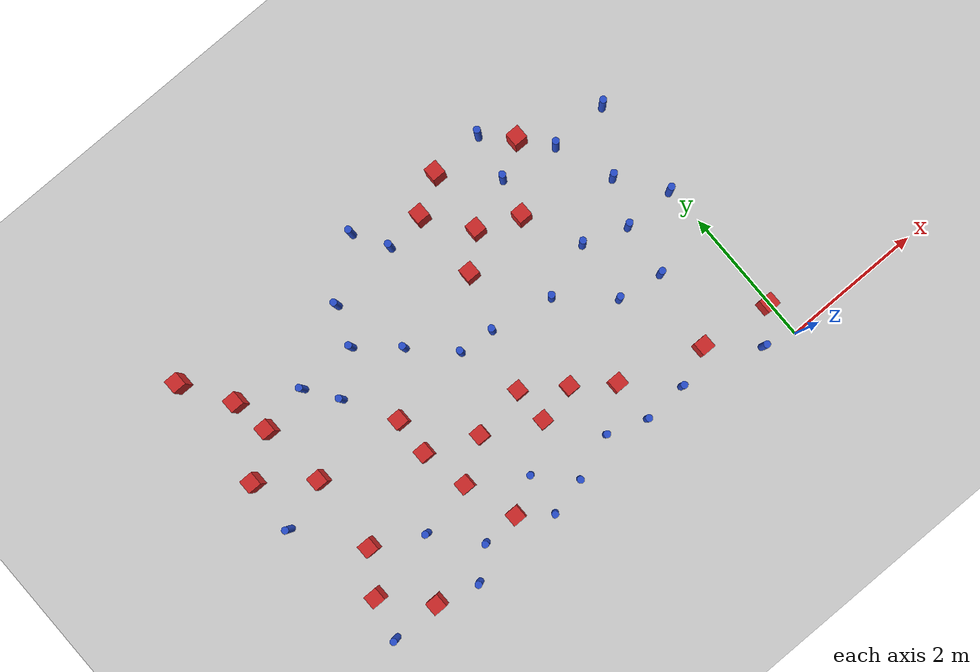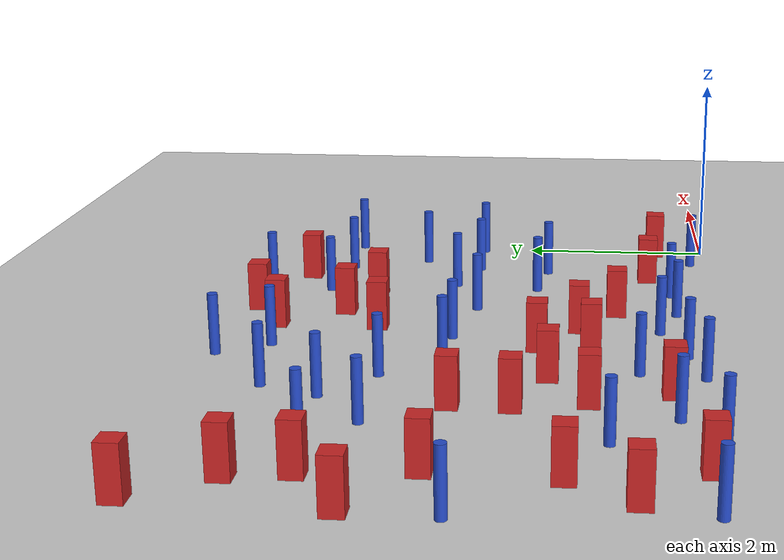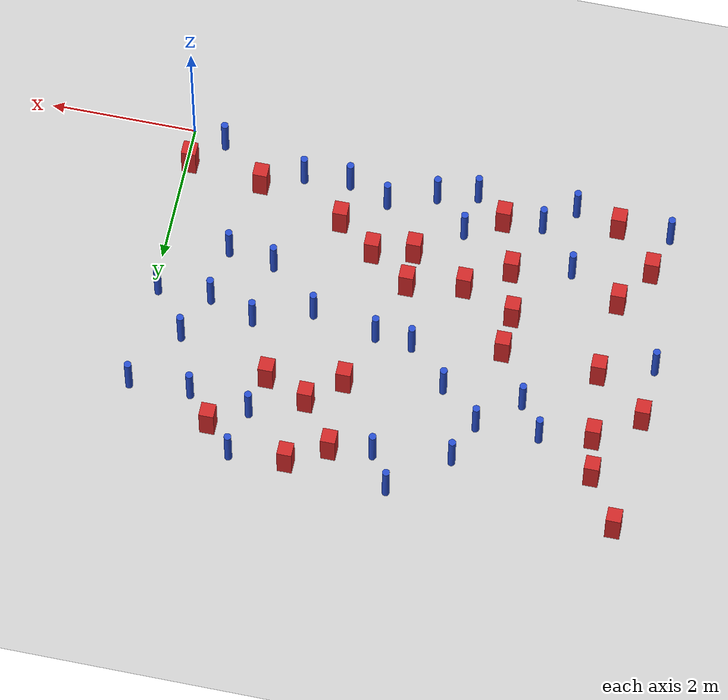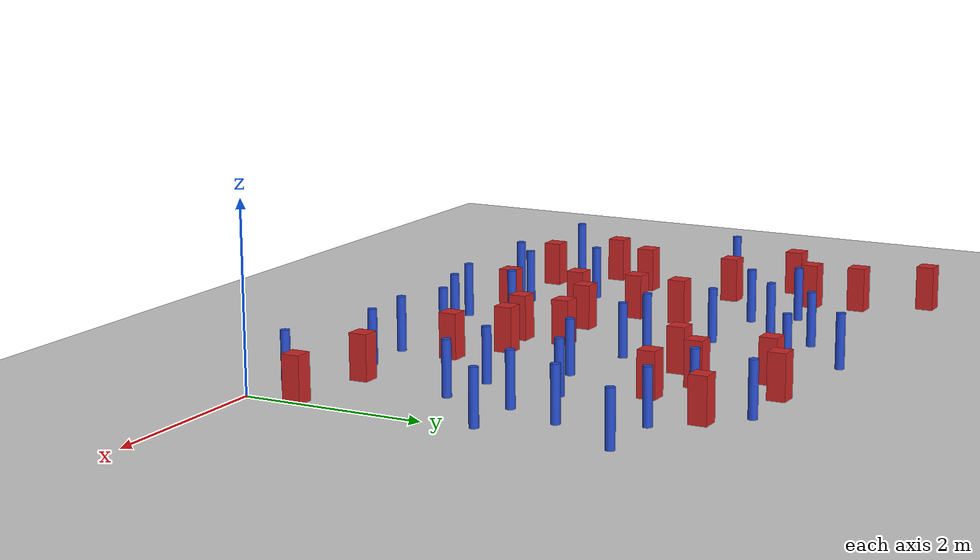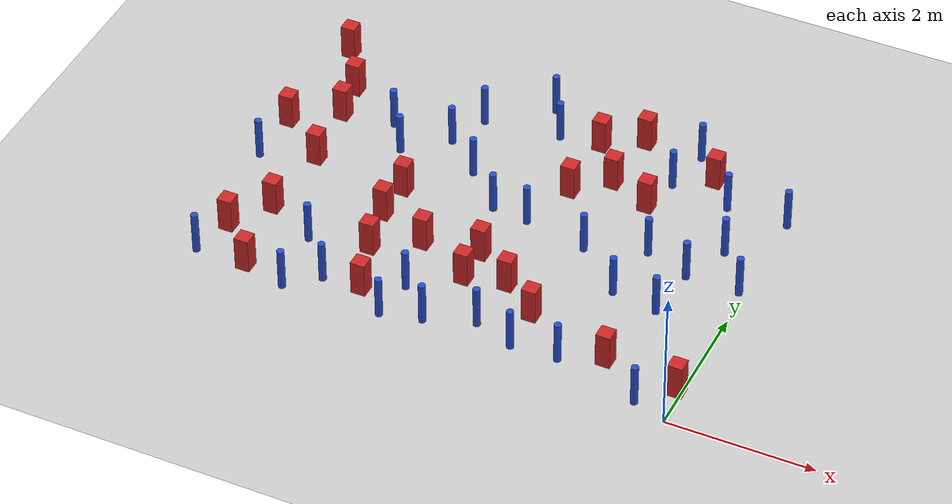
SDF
<sdf version="1.6">
 <world name="default">
  <model name="ground_plane">
   <static>1</static>
   <link name="link">
    <collision name="collision">
     <geometry><plane><normal>0 0 1</normal><size>100 100</size></plane></geometry>
     <surface><friction><ode><mu>100</mu><mu2>50</mu2></ode></friction></surface>
    </collision>
    <visual name="visual">
     <cast_shadows>0</cast_shadows>
     <geometry><plane><normal>0 0 1</normal><size>100 100</size></plane></geometry>
     <material>
      <ambient>1.0 1.0 1.0 1.0</ambient>
      <diffuse>0.8 0.8 0.8 1.0</diffuse>
      <specular>0.01 0.01 0.01 1.000000</specular>
     </material>
    </visual>
   </link>
  </model>
  <model name="pole_obstacle2">
   <static>true</static>
   <pose>-4.02288362384 0.260550982332 7.38925637345e-09 -8.47170692799e-08 1.24976765058e-08 -1.74513093017e-07</pose>
   <link name="link">
    <pose>0 0 0.3 0 -0 0</pose>
    <inertial>
     <mass>1</mass>
     <inertia><ixx>0.145833</ixx><ixy>0</ixy><ixz>0</ixz><iyy>0.145833</iyy><iyz>0</iyz><izz>0.125</izz></inertia>
    </inertial>
    <collision name="collision">
     <geometry><cylinder><radius>0.05</radius><length>.6</length></cylinder></geometry>
    </collision>
    <visual name="visual">
     <geometry><cylinder><radius>0.05</radius><length>.6</length></cylinder></geometry>
     <material>
      <script><name>Gazebo/Blue</name><uri>file://media/materials/scripts/gazebo.material</uri></script>
     </material>
    </visual>
   </link>
  </model>
  <model name="square_post_obstacle7">
   <static>true</static>
   <pose>-6.72281977313 4.81564942653 1.91545236811e-07 -7.35059704564e-06 1.12565212e-07 2.39332434364e-05</pose>
   <link name="link">
    <pose>0 0 0.25 0 -0 0</pose>
    <inertial>
     <mass>100</mass>
     <inertia>
      <ixx>0.166667</ixx>
      <ixy>0</ixy>
      <ixz>0</ixz>
      <iyy>0.166667</iyy>
      <iyz>0</iyz>
      <izz>0.166667</izz>
     </inertia>
    </inertial>
    <collision name="collision"><geometry><box><size>.2 .2 .5</size></box></geometry></collision>
    <visual name="visual">
     <geometry><box><size>.2 .2 .5</size></box></geometry>
     <material>
      <script><name>Gazebo/Red</name><uri>file://media/materials/scripts/gazebo.material</uri></script>
     </material>
    </visual>
   </link>
  </model>
  <model name="square_post_obstacle10">
   <static>true</static>
   <pose>-1.79566469293 3.57648062967 1.91545236811e-07 -7.35059704564e-06 1.12565212e-07 2.39332434364e-05</pose>
   <link name="link">
    <pose>0 0 0.25 0 -0 0</pose>
    <inertial>
     <mass>100</mass>
     <inertia>
      <ixx>0.166667</ixx>
      <ixy>0</ixy>
      <ixz>0</ixz>
      <iyy>0.166667</iyy>
      <iyz>0</iyz>
      <izz>0.166667</izz>
     </inertia>
    </inertial>
    <collision name="collision"><geometry><box><size>.2 .2 .5</size></box></geometry></collision>
    <visual name="visual">
     <geometry><box><size>.2 .2 .5</size></box></geometry>
     <material>
      <script><name>Gazebo/Red</name><uri>file://media/materials/scripts/gazebo.material</uri></script>
     </material>
    </visual>
   </link>
  </model>
  <model name="square_post_obstacle15">
   <static>true</static>
   <pose>-2.38048660059 3.82549536117 1.91545236811e-07 -7.35059704564e-06 1.12565212e-07 2.39332434364e-05</pose>
   <link name="link">
    <pose>0 0 0.25 0 -0 0</pose>
    <inertial>
     <mass>100</mass>
     <inertia>
      <ixx>0.166667</ixx>
      <ixy>0</ixy>
      <ixz>0</ixz>
      <iyy>0.166667</iyy>
      <iyz>0</iyz>
      <izz>0.166667</izz>
     </inertia>
    </inertial>
    <collision name="collision"><geometry><box><size>.2 .2 .5</size></box></geometry></collision>
    <visual name="visual">
     <geometry><box><size>.2 .2 .5</size></box></geometry>
     <material>
      <script><name>Gazebo/Red</name><uri>file://media/materials/scripts/gazebo.material</uri></script>
     </material>
    </visual>
   </link>
  </model>
  <model name="square_post_obstacle18">
   <static>true</static>
   <pose>-1.08649604366 0.678129804485 1.91545236811e-07 -7.35059704564e-06 1.12565212e-07 2.39332434364e-05</pose>
   <link name="link">
    <pose>0 0 0.25 0 -0 0</pose>
    <inertial>
     <mass>100</mass>
     <inertia>
      <ixx>0.166667</ixx>
      <ixy>0</ixy>
      <ixz>0</ixz>
      <iyy>0.166667</iyy>
      <iyz>0</iyz>
      <izz>0.166667</izz>
     </inertia>
    </inertial>
    <collision name="collision"><geometry><box><size>.2 .2 .5</size></box></geometry></collision>
    <visual name="visual">
     <geometry><box><size>.2 .2 .5</size></box></geometry>
     <material>
      <script><name>Gazebo/Red</name><uri>file://media/materials/scripts/gazebo.material</uri></script>
     </material>
    </visual>
   </link>
  </model>
  <model name="pole_obstacle16">
   <static>true</static>
   <pose>-3.59063591061 2.70652218727 7.38925637345e-09 -8.471706928e-08 1.24976765098e-08 -1.74513093016e-07</pose>
   <link name="link">
    <pose>0 0 0.3 0 -0 0</pose>
    <inertial>
     <mass>1</mass>
     <inertia><ixx>0.145833</ixx><ixy>0</ixy><ixz>0</ixz><iyy>0.145833</iyy><iyz>0</iyz><izz>0.125</izz></inertia>
    </inertial>
    <collision name="collision">
     <geometry><cylinder><radius>0.05</radius><length>.6</length></cylinder></geometry>
    </collision>
    <visual name="visual">
     <geometry><cylinder><radius>0.05</radius><length>.6</length></cylinder></geometry>
     <material>
      <script><name>Gazebo/Blue</name><uri>file://media/materials/scripts/gazebo.material</uri></script>
     </material>
    </visual>
   </link>
  </model>
  <model name="pole_obstacle17">
   <static>true</static>
   <pose>-1.41972756546 2.76100468626 7.38925637345e-09 -8.47170692799e-08 1.24976765053e-08 -1.74513093017e-07</pose>
   <link name="link">
    <pose>0 0 0.3 0 -0 0</pose>
    <inertial>
     <mass>1</mass>
     <inertia><ixx>0.145833</ixx><ixy>0</ixy><ixz>0</ixz><iyy>0.145833</iyy><iyz>0</iyz><izz>0.125</izz></inertia>
    </inertial>
    <collision name="collision">
     <geometry><cylinder><radius>0.05</radius><length>.6</length></cylinder></geometry>
    </collision>
    <visual name="visual">
     <geometry><cylinder><radius>0.05</radius><length>.6</length></cylinder></geometry>
     <material>
      <script><name>Gazebo/Blue</name><uri>file://media/materials/scripts/gazebo.material</uri></script>
     </material>
    </visual>
   </link>
  </model>
  <model name="pole_obstacle33">
   <static>true</static>
   <pose>-0.88521694704 1.78056740458 7.38925637345e-09 -8.47170692799e-08 1.24976765033e-08 -1.7451309302e-07</pose>
   <link name="link">
    <pose>0 0 0.3 0 -0 0</pose>
    <inertial>
     <mass>1</mass>
     <inertia><ixx>0.145833</ixx><ixy>0</ixy><ixz>0</ixz><iyy>0.145833</iyy><iyz>0</iyz><izz>0.125</izz></inertia>
    </inertial>
    <collision name="collision">
     <geometry><cylinder><radius>0.05</radius><length>.6</length></cylinder></geometry>
    </collision>
    <visual name="visual">
     <geometry><cylinder><radius>0.05</radius><length>.6</length></cylinder></geometry>
     <material>
      <script><name>Gazebo/Blue</name><uri>file://media/materials/scripts/gazebo.material</uri></script>
     </material>
    </visual>
   </link>
  </model>
  <model name="pole_obstacle37">
   <static>true</static>
   <pose>-0.839337424971 3.99876544537 7.38925637345e-09 -8.47170692799e-08 1.24976765083e-08 -1.74513093016e-07</pose>
   <link name="link">
    <pose>0 0 0.3 0 -0 0</pose>
    <inertial>
     <mass>1</mass>
     <inertia><ixx>0.145833</ixx><ixy>0</ixy><ixz>0</ixz><iyy>0.145833</iyy><iyz>0</iyz><izz>0.125</izz></inertia>
    </inertial>
    <collision name="collision">
     <geometry><cylinder><radius>0.05</radius><length>.6</length></cylinder></geometry>
    </collision>
    <visual name="visual">
     <geometry><cylinder><radius>0.05</radius><length>.6</length></cylinder></geometry>
     <material>
      <script><name>Gazebo/Blue</name><uri>file://media/materials/scripts/gazebo.material</uri></script>
     </material>
    </visual>
   </link>
  </model>
  <model name="pole_obstacle38">
   <static>true</static>
   <pose>-0.529924197971 3.17793815558 7.38925637345e-09 -8.47170692799e-08 1.24976765084e-08 -1.74513093016e-07</pose>
   <link name="link">
    <pose>0 0 0.3 0 -0 0</pose>
    <inertial>
     <mass>1</mass>
     <inertia><ixx>0.145833</ixx><ixy>0</ixy><ixz>0</ixz><iyy>0.145833</iyy><iyz>0</iyz><izz>0.125</izz></inertia>
    </inertial>
    <collision name="collision">
     <geometry><cylinder><radius>0.05</radius><length>.6</length></cylinder></geometry>
    </collision>
    <visual name="visual">
     <geometry><cylinder><radius>0.05</radius><length>.6</length></cylinder></geometry>
     <material>
      <script><name>Gazebo/Blue</name><uri>file://media/materials/scripts/gazebo.material</uri></script>
     </material>
    </visual>
   </link>
  </model>
  <model name="pole_obstacle45">
   <static>true</static>
   <pose>-5.37672932414 0.213821925525 7.38925637345e-09 -8.471706928e-08 1.24976765136e-08 -1.74513093014e-07</pose>
   <link name="link">
    <pose>0 0 0.3 0 -0 0</pose>
    <inertial>
     <mass>1</mass>
     <inertia><ixx>0.145833</ixx><ixy>0</ixy><ixz>0</ixz><iyy>0.145833</iyy><iyz>0</iyz><izz>0.125</izz></inertia>
    </inertial>
    <collision name="collision">
     <geometry><cylinder><radius>0.05</radius><length>.6</length></cylinder></geometry>
    </collision>
    <visual name="visual">
     <geometry><cylinder><radius>0.05</radius><length>.6</length></cylinder></geometry>
     <material>
      <script><name>Gazebo/Blue</name><uri>file://media/materials/scripts/gazebo.material</uri></script>
     </material>
    </visual>
   </link>
  </model>
  <model name="square_post_obstacle45">
   <static>true</static>
   <pose>-3.3424861455 1.30667148875 1.91545236811e-07 -7.35059704564e-06 1.12565212e-07 2.39332434364e-05</pose>
   <link name="link">
    <pose>0 0 0.25 0 -0 0</pose>
    <inertial>
     <mass>100</mass>
     <inertia>
      <ixx>0.166667</ixx>
      <ixy>0</ixy>
      <ixz>0</ixz>
      <iyy>0.166667</iyy>
      <iyz>0</iyz>
      <izz>0.166667</izz>
     </inertia>
    </inertial>
    <collision name="collision"><geometry><box><size>.2 .2 .5</size></box></geometry></collision>
    <visual name="visual">
     <geometry><box><size>.2 .2 .5</size></box></geometry>
     <material>
      <script><name>Gazebo/Red</name><uri>file://media/materials/scripts/gazebo.material</uri></script>
     </material>
    </visual>
   </link>
  </model>
  <model name="square_post_obstacle47">
   <static>true</static>
   <pose>-1.17730613893 4.40486807342 1.91545236811e-07 -7.35059704564e-06 1.12565212e-07 2.39332434364e-05</pose>
   <link name="link">
    <pose>0 0 0.25 0 -0 0</pose>
    <inertial>
     <mass>100</mass>
     <inertia>
      <ixx>0.166667</ixx>
      <ixy>0</ixy>
      <ixz>0</ixz>
      <iyy>0.166667</iyy>
      <iyz>0</iyz>
      <izz>0.166667</izz>
     </inertia>
    </inertial>
    <collision name="collision"><geometry><box><size>.2 .2 .5</size></box></geometry></collision>
    <visual name="visual">
     <geometry><box><size>.2 .2 .5</size></box></geometry>
     <material>
      <script><name>Gazebo/Red</name><uri>file://media/materials/scripts/gazebo.material</uri></script>
     </material>
    </visual>
   </link>
  </model>
  <model name="pole_obstacle48">
   <static>true</static>
   <pose>-0.799027948205 2.54511101772 7.38925637345e-09 -8.47170692799e-08 1.2497676509e-08 -1.74513093016e-07</pose>
   <link name="link">
    <pose>0 0 0.3 0 -0 0</pose>
    <inertial>
     <mass>1</mass>
     <inertia><ixx>0.145833</ixx><ixy>0</ixy><ixz>0</ixz><iyy>0.145833</iyy><iyz>0</iyz><izz>0.125</izz></inertia>
    </inertial>
    <collision name="collision">
     <geometry><cylinder><radius>0.05</radius><length>.6</length></cylinder></geometry>
    </collision>
    <visual name="visual">
     <geometry><cylinder><radius>0.05</radius><length>.6</length></cylinder></geometry>
     <material>
      <script><name>Gazebo/Blue</name><uri>file://media/materials/scripts/gazebo.material</uri></script>
     </material>
    </visual>
   </link>
  </model>
  <model name="pole_obstacle50">
   <static>true</static>
   <pose>-1.52088882725 1.88133360358 7.38925637345e-09 -8.471706928e-08 1.24976765079e-08 -1.74513093017e-07</pose>
   <link name="link">
    <pose>0 0 0.3 0 -0 0</pose>
    <inertial>
     <mass>1</mass>
     <inertia><ixx>0.145833</ixx><ixy>0</ixy><ixz>0</ixz><iyy>0.145833</iyy><iyz>0</iyz><izz>0.125</izz></inertia>
    </inertial>
    <collision name="collision">
     <geometry><cylinder><radius>0.05</radius><length>.6</length></cylinder></geometry>
    </collision>
    <visual name="visual">
     <geometry><cylinder><radius>0.05</radius><length>.6</length></cylinder></geometry>
     <material>
      <script><name>Gazebo/Blue</name><uri>file://media/materials/scripts/gazebo.material</uri></script>
     </material>
    </visual>
   </link>
  </model>
  <model name="square_post_obstacle52">
   <static>true</static>
   <pose>-4.80095884519 2.54305989513 1.91545236811e-07 -7.35059704564e-06 1.12565212e-07 2.39332434364e-05</pose>
   <link name="link">
    <pose>0 0 0.25 0 -0 0</pose>
    <inertial>
     <mass>100</mass>
     <inertia>
      <ixx>0.166667</ixx>
      <ixy>0</ixy>
      <ixz>0</ixz>
      <iyy>0.166667</iyy>
      <iyz>0</iyz>
      <izz>0.166667</izz>
     </inertia>
    </inertial>
    <collision name="collision"><geometry><box><size>.2 .2 .5</size></box></geometry></collision>
    <visual name="visual">
     <geometry><box><size>.2 .2 .5</size></box></geometry>
     <material>
      <script><name>Gazebo/Red</name><uri>file://media/materials/scripts/gazebo.material</uri></script>
     </material>
    </visual>
   </link>
  </model>
  <model name="square_post_obstacle56">
   <static>true</static>
   <pose>-4.10913657978 1.69810923646 1.91545236811e-07 -7.35059704564e-06 1.12565212e-07 2.39332434364e-05</pose>
   <link name="link">
    <pose>0 0 0.25 0 -0 0</pose>
    <inertial>
     <mass>100</mass>
     <inertia>
      <ixx>0.166667</ixx>
      <ixy>0</ixy>
      <ixz>0</ixz>
      <iyy>0.166667</iyy>
      <iyz>0</iyz>
      <izz>0.166667</izz>
     </inertia>
    </inertial>
    <collision name="collision"><geometry><box><size>.2 .2 .5</size></box></geometry></collision>
    <visual name="visual">
     <geometry><box><size>.2 .2 .5</size></box></geometry>
     <material>
      <script><name>Gazebo/Red</name><uri>file://media/materials/scripts/gazebo.material</uri></script>
     </material>
    </visual>
   </link>
  </model>
  <model name="square_post_obstacle61">
   <static>true</static>
   <pose>-6.30442835152 4.12791431736 1.91545236811e-07 -7.35059704564e-06 1.12565212e-07 2.39332434364e-05</pose>
   <link name="link">
    <pose>0 0 0.25 0 -0 0</pose>
    <inertial>
     <mass>100</mass>
     <inertia>
      <ixx>0.166667</ixx>
      <ixy>0</ixy>
      <ixz>0</ixz>
      <iyy>0.166667</iyy>
      <iyz>0</iyz>
      <izz>0.166667</izz>
     </inertia>
    </inertial>
    <collision name="collision"><geometry><box><size>.2 .2 .5</size></box></geometry></collision>
    <visual name="visual">
     <geometry><box><size>.2 .2 .5</size></box></geometry>
     <material>
      <script><name>Gazebo/Red</name><uri>file://media/materials/scripts/gazebo.material</uri></script>
     </material>
    </visual>
   </link>
  </model>
  <model name="pole_obstacle65">
   <static>true</static>
   <pose>-5.51418417547 3.69711565611 7.38925637345e-09 -8.47170692798e-08 1.24976764937e-08 -1.74513093023e-07</pose>
   <link name="link">
    <pose>0 0 0.3 0 -0 0</pose>
    <inertial>
     <mass>1</mass>
     <inertia><ixx>0.145833</ixx><ixy>0</ixy><ixz>0</ixz><iyy>0.145833</iyy><iyz>0</iyz><izz>0.125</izz></inertia>
    </inertial>
    <collision name="collision">
     <geometry><cylinder><radius>0.05</radius><length>.6</length></cylinder></geometry>
    </collision>
    <visual name="visual">
     <geometry><cylinder><radius>0.05</radius><length>.6</length></cylinder></geometry>
     <material>
      <script><name>Gazebo/Blue</name><uri>file://media/materials/scripts/gazebo.material</uri></script>
     </material>
    </visual>
   </link>
  </model>
  <model name="square_post_obstacle70">
   <static>true</static>
   <pose>-3.3454929308 1.82337777555 1.91545236811e-07 -7.35059704564e-06 1.12565212e-07 2.39332434364e-05</pose>
   <link name="link">
    <pose>0 0 0.25 0 -0 0</pose>
    <inertial>
     <mass>100</mass>
     <inertia>
      <ixx>0.166667</ixx>
      <ixy>0</ixy>
      <ixz>0</ixz>
      <iyy>0.166667</iyy>
      <iyz>0</iyz>
      <izz>0.166667</izz>
     </inertia>
    </inertial>
    <collision name="collision"><geometry><box><size>.2 .2 .5</size></box></geometry></collision>
    <visual name="visual">
     <geometry><box><size>.2 .2 .5</size></box></geometry>
     <material>
      <script><name>Gazebo/Red</name><uri>file://media/materials/scripts/gazebo.material</uri></script>
     </material>
    </visual>
   </link>
  </model>
  <model name="square_post_obstacle73">
   <static>true</static>
   <pose>-6.11959921745 2.62537722753 1.91545236811e-07 -7.35059704564e-06 1.12565212e-07 2.39332434364e-05</pose>
   <link name="link">
    <pose>0 0 0.25 0 -0 0</pose>
    <inertial>
     <mass>100</mass>
     <inertia>
      <ixx>0.166667</ixx>
      <ixy>0</ixy>
      <ixz>0</ixz>
      <iyy>0.166667</iyy>
      <iyz>0</iyz>
      <izz>0.166667</izz>
     </inertia>
    </inertial>
    <collision name="collision"><geometry><box><size>.2 .2 .5</size></box></geometry></collision>
    <visual name="visual">
     <geometry><box><size>.2 .2 .5</size></box></geometry>
     <material>
      <script><name>Gazebo/Red</name><uri>file://media/materials/scripts/gazebo.material</uri></script>
     </material>
    </visual>
   </link>
  </model>
  <model name="pole_obstacle69">
   <static>true</static>
   <pose>-1.53541971919 4.78736993391 7.38925637345e-09 -8.47170692799e-08 1.24976765033e-08 -1.74513093018e-07</pose>
   <link name="link">
    <pose>0 0 0.3 0 -0 0</pose>
    <inertial>
     <mass>1</mass>
     <inertia><ixx>0.145833</ixx><ixy>0</ixy><ixz>0</ixz><iyy>0.145833</iyy><iyz>0</iyz><izz>0.125</izz></inertia>
    </inertial>
    <collision name="collision">
     <geometry><cylinder><radius>0.05</radius><length>.6</length></cylinder></geometry>
    </collision>
    <visual name="visual">
     <geometry><cylinder><radius>0.05</radius><length>.6</length></cylinder></geometry>
     <material>
      <script><name>Gazebo/Blue</name><uri>file://media/materials/scripts/gazebo.material</uri></script>
     </material>
    </visual>
   </link>
  </model>
  <model name="pole_obstacle70">
   <static>true</static>
   <pose>-5.20522984234 3.25235434078 7.38925637345e-09 -8.47170692798e-08 1.24976764937e-08 -1.74513093023e-07</pose>
   <link name="link">
    <pose>0 0 0.3 0 -0 0</pose>
    <inertial>
     <mass>1</mass>
     <inertia><ixx>0.145833</ixx><ixy>0</ixy><ixz>0</ixz><iyy>0.145833</iyy><iyz>0</iyz><izz>0.125</izz></inertia>
    </inertial>
    <collision name="collision">
     <geometry><cylinder><radius>0.05</radius><length>.6</length></cylinder></geometry>
    </collision>
    <visual name="visual">
     <geometry><cylinder><radius>0.05</radius><length>.6</length></cylinder></geometry>
     <material>
      <script><name>Gazebo/Blue</name><uri>file://media/materials/scripts/gazebo.material</uri></script>
     </material>
    </visual>
   </link>
  </model>
  <model name="pole_obstacle76">
   <static>true</static>
   <pose>-4.66148103217 3.70528833598 7.38925637345e-09 -8.47170692798e-08 1.24976764937e-08 -1.74513093023e-07</pose>
   <link name="link">
    <pose>0 0 0.3 0 -0 0</pose>
    <inertial>
     <mass>1</mass>
     <inertia><ixx>0.145833</ixx><ixy>0</ixy><ixz>0</ixz><iyy>0.145833</iyy><iyz>0</iyz><izz>0.125</izz></inertia>
    </inertial>
    <collision name="collision">
     <geometry><cylinder><radius>0.05</radius><length>.6</length></cylinder></geometry>
    </collision>
    <visual name="visual">
     <geometry><cylinder><radius>0.05</radius><length>.6</length></cylinder></geometry>
     <material>
      <script><name>Gazebo/Blue</name><uri>file://media/materials/scripts/gazebo.material</uri></script>
     </material>
    </visual>
   </link>
  </model>
  <model name="pole_obstacle87">
   <static>true</static>
   <pose>-3.68314602437 4.87391654846 7.38925637345e-09 -8.47170692798e-08 1.24976765033e-08 -1.74513093019e-07</pose>
   <link name="link">
    <pose>0 0 0.3 0 -0 0</pose>
    <inertial>
     <mass>1</mass>
     <inertia><ixx>0.145833</ixx><ixy>0</ixy><ixz>0</ixz><iyy>0.145833</iyy><iyz>0</iyz><izz>0.125</izz></inertia>
    </inertial>
    <collision name="collision">
     <geometry><cylinder><radius>0.05</radius><length>.6</length></cylinder></geometry>
    </collision>
    <visual name="visual">
     <geometry><cylinder><radius>0.05</radius><length>.6</length></cylinder></geometry>
     <material>
      <script><name>Gazebo/Blue</name><uri>file://media/materials/scripts/gazebo.material</uri></script>
     </material>
    </visual>
   </link>
  </model>
  <model name="pole_obstacle96">
   <static>true</static>
   <pose>-5.48728348385 1.16060156533 7.38925637345e-09 -8.471706928e-08 1.24976765134e-08 -1.74513093015e-07</pose>
   <link name="link">
    <pose>0 0 0.3 0 -0 0</pose>
    <inertial>
     <mass>1</mass>
     <inertia><ixx>0.145833</ixx><ixy>0</ixy><ixz>0</ixz><iyy>0.145833</iyy><iyz>0</iyz><izz>0.125</izz></inertia>
    </inertial>
    <collision name="collision">
     <geometry><cylinder><radius>0.05</radius><length>.6</length></cylinder></geometry>
    </collision>
    <visual name="visual">
     <geometry><cylinder><radius>0.05</radius><length>.6</length></cylinder></geometry>
     <material>
      <script><name>Gazebo/Blue</name><uri>file://media/materials/scripts/gazebo.material</uri></script>
     </material>
    </visual>
   </link>
  </model>
  <model name="pole_obstacle108">
   <static>true</static>
   <pose>-3.47717565525 0.389131987897 7.38925637345e-09 -8.471706928e-08 1.24976765172e-08 -1.74513093013e-07</pose>
   <link name="link">
    <pose>0 0 0.3 0 -0 0</pose>
    <inertial>
     <mass>1</mass>
     <inertia><ixx>0.145833</ixx><ixy>0</ixy><ixz>0</ixz><iyy>0.145833</iyy><iyz>0</iyz><izz>0.125</izz></inertia>
    </inertial>
    <collision name="collision">
     <geometry><cylinder><radius>0.05</radius><length>.6</length></cylinder></geometry>
    </collision>
    <visual name="visual">
     <geometry><cylinder><radius>0.05</radius><length>.6</length></cylinder></geometry>
     <material>
      <script><name>Gazebo/Blue</name><uri>file://media/materials/scripts/gazebo.material</uri></script>
     </material>
    </visual>
   </link>
  </model>
  <model name="square_post_obstacle97">
   <static>true</static>
   <pose>-6.53955249002 0.955374389477 1.91545236811e-07 -7.35059704564e-06 1.12565212e-07 2.39332434364e-05</pose>
   <link name="link">
    <pose>0 0 0.25 0 -0 0</pose>
    <inertial>
     <mass>100</mass>
     <inertia>
      <ixx>0.166667</ixx>
      <ixy>0</ixy>
      <ixz>0</ixz>
      <iyy>0.166667</iyy>
      <iyz>0</iyz>
      <izz>0.166667</izz>
     </inertia>
    </inertial>
    <collision name="collision"><geometry><box><size>.2 .2 .5</size></box></geometry></collision>
    <visual name="visual">
     <geometry><box><size>.2 .2 .5</size></box></geometry>
     <material>
      <script><name>Gazebo/Red</name><uri>file://media/materials/scripts/gazebo.material</uri></script>
     </material>
    </visual>
   </link>
  </model>
  <model name="square_post_obstacle99">
   <static>true</static>
   <pose>-6.18154161153 1.51510342565 1.91545236811e-07 -7.35059704564e-06 1.12565212e-07 2.39332434364e-05</pose>
   <link name="link">
    <pose>0 0 0.25 0 -0 0</pose>
    <inertial>
     <mass>100</mass>
     <inertia>
      <ixx>0.166667</ixx>
      <ixy>0</ixy>
      <ixz>0</ixz>
      <iyy>0.166667</iyy>
      <iyz>0</iyz>
      <izz>0.166667</izz>
     </inertia>
    </inertial>
    <collision name="collision"><geometry><box><size>.2 .2 .5</size></box></geometry></collision>
    <visual name="visual">
     <geometry><box><size>.2 .2 .5</size></box></geometry>
     <material>
      <script><name>Gazebo/Red</name><uri>file://media/materials/scripts/gazebo.material</uri></script>
     </material>
    </visual>
   </link>
  </model>
  <model name="pole_obstacle115">
   <static>true</static>
   <pose>-0.00590156966855 4.01124573222 7.38925637345e-09 -8.47170692799e-08 1.24976765055e-08 -1.74513093019e-07</pose>
   <link name="link">
    <pose>0 0 0.3 0 -0 0</pose>
    <inertial>
     <mass>1</mass>
     <inertia><ixx>0.145833</ixx><ixy>0</ixy><ixz>0</ixz><iyy>0.145833</iyy><iyz>0</iyz><izz>0.125</izz></inertia>
    </inertial>
    <collision name="collision">
     <geometry><cylinder><radius>0.05</radius><length>.6</length></cylinder></geometry>
    </collision>
    <visual name="visual">
     <geometry><cylinder><radius>0.05</radius><length>.6</length></cylinder></geometry>
     <material>
      <script><name>Gazebo/Blue</name><uri>file://media/materials/scripts/gazebo.material</uri></script>
     </material>
    </visual>
   </link>
  </model>
  <model name="pole_obstacle131">
   <static>true</static>
   <pose>-1.63965275175 0.453551942423 7.38925637345e-09 -8.47170692799e-08 1.24976765052e-08 -1.74513093018e-07</pose>
   <link name="link">
    <pose>0 0 0.3 0 -0 0</pose>
    <inertial>
     <mass>1</mass>
     <inertia><ixx>0.145833</ixx><ixy>0</ixy><ixz>0</ixz><iyy>0.145833</iyy><iyz>0</iyz><izz>0.125</izz></inertia>
    </inertial>
    <collision name="collision">
     <geometry><cylinder><radius>0.05</radius><length>.6</length></cylinder></geometry>
    </collision>
    <visual name="visual">
     <geometry><cylinder><radius>0.05</radius><length>.6</length></cylinder></geometry>
     <material>
      <script><name>Gazebo/Blue</name><uri>file://media/materials/scripts/gazebo.material</uri></script>
     </material>
    </visual>
   </link>
  </model>
  <model name="pole_obstacle136">
   <static>true</static>
   <pose>-2.27400994695 0.422213712599 7.38925637345e-09 -8.471706928e-08 1.24976765172e-08 -1.74513093013e-07</pose>
   <link name="link">
    <pose>0 0 0.3 0 -0 0</pose>
    <inertial>
     <mass>1</mass>
     <inertia><ixx>0.145833</ixx><ixy>0</ixy><ixz>0</ixz><iyy>0.145833</iyy><iyz>0</iyz><izz>0.125</izz></inertia>
    </inertial>
    <collision name="collision">
     <geometry><cylinder><radius>0.05</radius><length>.6</length></cylinder></geometry>
    </collision>
    <visual name="visual">
     <geometry><cylinder><radius>0.05</radius><length>.6</length></cylinder></geometry>
     <material>
      <script><name>Gazebo/Blue</name><uri>file://media/materials/scripts/gazebo.material</uri></script>
     </material>
    </visual>
   </link>
  </model>
  <model name="square_post_obstacle120">
   <static>true</static>
   <pose>-2.82990901123 4.45145959006 1.91545236811e-07 -7.35059704564e-06 1.12565212e-07 2.39332434364e-05</pose>
   <link name="link">
    <pose>0 0 0.25 0 -0 0</pose>
    <inertial>
     <mass>100</mass>
     <inertia>
      <ixx>0.166667</ixx>
      <ixy>0</ixy>
      <ixz>0</ixz>
      <iyy>0.166667</iyy>
      <iyz>0</iyz>
      <izz>0.166667</izz>
     </inertia>
    </inertial>
    <collision name="collision"><geometry><box><size>.2 .2 .5</size></box></geometry></collision>
    <visual name="visual">
     <geometry><box><size>.2 .2 .5</size></box></geometry>
     <material>
      <script><name>Gazebo/Red</name><uri>file://media/materials/scripts/gazebo.material</uri></script>
     </material>
    </visual>
   </link>
  </model>
  <model name="square_post_obstacle122">
   <static>true</static>
   <pose>-4.6856548668 1.32664230948 1.91545236811e-07 -7.35059704564e-06 1.12565212e-07 2.39332434364e-05</pose>
   <link name="link">
    <pose>0 0 0.25 0 -0 0</pose>
    <inertial>
     <mass>100</mass>
     <inertia>
      <ixx>0.166667</ixx>
      <ixy>0</ixy>
      <ixz>0</ixz>
      <iyy>0.166667</iyy>
      <iyz>0</iyz>
      <izz>0.166667</izz>
     </inertia>
    </inertial>
    <collision name="collision"><geometry><box><size>.2 .2 .5</size></box></geometry></collision>
    <visual name="visual">
     <geometry><box><size>.2 .2 .5</size></box></geometry>
     <material>
      <script><name>Gazebo/Red</name><uri>file://media/materials/scripts/gazebo.material</uri></script>
     </material>
    </visual>
   </link>
  </model>
  <model name="pole_obstacle149">
   <static>true</static>
   <pose>-2.19910741831 2.4831902227 7.38925637345e-09 -8.47170692798e-08 1.24976764939e-08 -1.74513093025e-07</pose>
   <link name="link">
    <pose>0 0 0.3 0 -0 0</pose>
    <inertial>
     <mass>1</mass>
     <inertia><ixx>0.145833</ixx><ixy>0</ixy><ixz>0</ixz><iyy>0.145833</iyy><iyz>0</iyz><izz>0.125</izz></inertia>
    </inertial>
    <collision name="collision">
     <geometry><cylinder><radius>0.05</radius><length>.6</length></cylinder></geometry>
    </collision>
    <visual name="visual">
     <geometry><cylinder><radius>0.05</radius><length>.6</length></cylinder></geometry>
     <material>
      <script><name>Gazebo/Blue</name><uri>file://media/materials/scripts/gazebo.material</uri></script>
     </material>
    </visual>
   </link>
  </model>
  <model name="pole_obstacle151">
   <static>true</static>
   <pose>-4.44720604743 4.26232181601 7.38925637345e-09 -8.47170692796e-08 1.24976764786e-08 -1.74513093032e-07</pose>
   <link name="link">
    <pose>0 0 0.3 0 -0 0</pose>
    <inertial>
     <mass>1</mass>
     <inertia><ixx>0.145833</ixx><ixy>0</ixy><ixz>0</ixz><iyy>0.145833</iyy><iyz>0</iyz><izz>0.125</izz></inertia>
    </inertial>
    <collision name="collision">
     <geometry><cylinder><radius>0.05</radius><length>.6</length></cylinder></geometry>
    </collision>
    <visual name="visual">
     <geometry><cylinder><radius>0.05</radius><length>.6</length></cylinder></geometry>
     <material>
      <script><name>Gazebo/Blue</name><uri>file://media/materials/scripts/gazebo.material</uri></script>
     </material>
    </visual>
   </link>
  </model>
  <model name="pole_obstacle153">
   <static>true</static>
   <pose>-4.1289058052 3.23948906048 7.38925637345e-09 -8.47170692798e-08 1.24976764937e-08 -1.74513093023e-07</pose>
   <link name="link">
    <pose>0 0 0.3 0 -0 0</pose>
    <inertial>
     <mass>1</mass>
     <inertia><ixx>0.145833</ixx><ixy>0</ixy><ixz>0</ixz><iyy>0.145833</iyy><iyz>0</iyz><izz>0.125</izz></inertia>
    </inertial>
    <collision name="collision">
     <geometry><cylinder><radius>0.05</radius><length>.6</length></cylinder></geometry>
    </collision>
    <visual name="visual">
     <geometry><cylinder><radius>0.05</radius><length>.6</length></cylinder></geometry>
     <material>
      <script><name>Gazebo/Blue</name><uri>file://media/materials/scripts/gazebo.material</uri></script>
     </material>
    </visual>
   </link>
  </model>
  <model name="pole_obstacle154">
   <static>true</static>
   <pose>-0.467407309928 0.156388102048 7.38925637345e-09 -8.47170692799e-08 1.24976764972e-08 -1.74513093022e-07</pose>
   <link name="link">
    <pose>0 0 0.3 0 -0 0</pose>
    <inertial>
     <mass>1</mass>
     <inertia><ixx>0.145833</ixx><ixy>0</ixy><ixz>0</ixz><iyy>0.145833</iyy><iyz>0</iyz><izz>0.125</izz></inertia>
    </inertial>
    <collision name="collision">
     <geometry><cylinder><radius>0.05</radius><length>.6</length></cylinder></geometry>
    </collision>
    <visual name="visual">
     <geometry><cylinder><radius>0.05</radius><length>.6</length></cylinder></geometry>
     <material>
      <script><name>Gazebo/Blue</name><uri>file://media/materials/scripts/gazebo.material</uri></script>
     </material>
    </visual>
   </link>
  </model>
  <model name="square_post_obstacle153">
   <static>true</static>
   <pose>-2.8230966807 3.43265901398 1.91545236811e-07 -7.35059704564e-06 1.12565212e-07 2.39332434364e-05</pose>
   <link name="link">
    <pose>0 0 0.25 0 -0 0</pose>
    <inertial>
     <mass>100</mass>
     <inertia>
      <ixx>0.166667</ixx>
      <ixy>0</ixy>
      <ixz>0</ixz>
      <iyy>0.166667</iyy>
      <iyz>0</iyz>
      <izz>0.166667</izz>
     </inertia>
    </inertial>
    <collision name="collision"><geometry><box><size>.2 .2 .5</size></box></geometry></collision>
    <visual name="visual">
     <geometry><box><size>.2 .2 .5</size></box></geometry>
     <material>
      <script><name>Gazebo/Red</name><uri>file://media/materials/scripts/gazebo.material</uri></script>
     </material>
    </visual>
   </link>
  </model>
  <model name="pole_obstacle162">
   <static>true</static>
   <pose>-0.0689244274578 2.54800999186 7.38925637345e-09 -8.47170692799e-08 1.24976765053e-08 -1.74513093018e-07</pose>
   <link name="link">
    <pose>0 0 0.3 0 -0 0</pose>
    <inertial>
     <mass>1</mass>
     <inertia><ixx>0.145833</ixx><ixy>0</ixy><ixz>0</ixz><iyy>0.145833</iyy><iyz>0</iyz><izz>0.125</izz></inertia>
    </inertial>
    <collision name="collision">
     <geometry><cylinder><radius>0.05</radius><length>.6</length></cylinder></geometry>
    </collision>
    <visual name="visual">
     <geometry><cylinder><radius>0.05</radius><length>.6</length></cylinder></geometry>
     <material>
      <script><name>Gazebo/Blue</name><uri>file://media/materials/scripts/gazebo.material</uri></script>
     </material>
    </visual>
   </link>
  </model>
  <model name="square_post_obstacle161">
   <static>true</static>
   <pose>-6.22050287734 3.58557197878 1.91545236811e-07 -7.35059704564e-06 1.12565212e-07 2.39332434364e-05</pose>
   <link name="link">
    <pose>0 0 0.25 0 -0 0</pose>
    <inertial>
     <mass>100</mass>
     <inertia>
      <ixx>0.166667</ixx>
      <ixy>0</ixy>
      <ixz>0</ixz>
      <iyy>0.166667</iyy>
      <iyz>0</iyz>
      <izz>0.166667</izz>
     </inertia>
    </inertial>
    <collision name="collision"><geometry><box><size>.2 .2 .5</size></box></geometry></collision>
    <visual name="visual">
     <geometry><box><size>.2 .2 .5</size></box></geometry>
     <material>
      <script><name>Gazebo/Red</name><uri>file://media/materials/scripts/gazebo.material</uri></script>
     </material>
    </visual>
   </link>
  </model>
  <model name="pole_obstacle182">
   <static>true</static>
   <pose>-6.84523900386 2.38444763918 7.38925637345e-09 -8.47170692798e-08 1.24976764937e-08 -1.74513093023e-07</pose>
   <link name="link">
    <pose>0 0 0.3 0 -0 0</pose>
    <inertial>
     <mass>1</mass>
     <inertia><ixx>0.145833</ixx><ixy>0</ixy><ixz>0</ixz><iyy>0.145833</iyy><iyz>0</iyz><izz>0.125</izz></inertia>
    </inertial>
    <collision name="collision">
     <geometry><cylinder><radius>0.05</radius><length>.6</length></cylinder></geometry>
    </collision>
    <visual name="visual">
     <geometry><cylinder><radius>0.05</radius><length>.6</length></cylinder></geometry>
     <material>
      <script><name>Gazebo/Blue</name><uri>file://media/materials/scripts/gazebo.material</uri></script>
     </material>
    </visual>
   </link>
  </model>
  <model name="square_post_obstacle174">
   <static>true</static>
   <pose>-2.27246453459 1.04262190972 1.91545236811e-07 -7.35059704564e-06 1.12565212e-07 2.39332434364e-05</pose>
   <link name="link">
    <pose>0 0 0.25 0 -0 0</pose>
    <inertial>
     <mass>100</mass>
     <inertia>
      <ixx>0.166667</ixx>
      <ixy>0</ixy>
      <ixz>0</ixz>
      <iyy>0.166667</iyy>
      <iyz>0</iyz>
      <izz>0.166667</izz>
     </inertia>
    </inertial>
    <collision name="collision"><geometry><box><size>.2 .2 .5</size></box></geometry></collision>
    <visual name="visual">
     <geometry><box><size>.2 .2 .5</size></box></geometry>
     <material>
      <script><name>Gazebo/Red</name><uri>file://media/materials/scripts/gazebo.material</uri></script>
     </material>
    </visual>
   </link>
  </model>
  <model name="square_post_obstacle181">
   <static>true</static>
   <pose>-2.78776650278 1.42560867669 1.91545236811e-07 -7.35059704564e-06 1.12565212e-07 2.39332434364e-05</pose>
   <link name="link">
    <pose>0 0 0.25 0 -0 0</pose>
    <inertial>
     <mass>100</mass>
     <inertia>
      <ixx>0.166667</ixx>
      <ixy>0</ixy>
      <ixz>0</ixz>
      <iyy>0.166667</iyy>
      <iyz>0</iyz>
      <izz>0.166667</izz>
     </inertia>
    </inertial>
    <collision name="collision"><geometry><box><size>.2 .2 .5</size></box></geometry></collision>
    <visual name="visual">
     <geometry><box><size>.2 .2 .5</size></box></geometry>
     <material>
      <script><name>Gazebo/Red</name><uri>file://media/materials/scripts/gazebo.material</uri></script>
     </material>
    </visual>
   </link>
  </model>
  <model name="square_post_obstacle185">
   <static>true</static>
   <pose>-5.97997771417 0.367422718727 1.91545236811e-07 -7.35059704564e-06 1.12565212e-07 2.39332434364e-05</pose>
   <link name="link">
    <pose>0 0 0.25 0 -0 0</pose>
    <inertial>
     <mass>100</mass>
     <inertia>
      <ixx>0.166667</ixx>
      <ixy>0</ixy>
      <ixz>0</ixz>
      <iyy>0.166667</iyy>
      <iyz>0</iyz>
      <izz>0.166667</izz>
     </inertia>
    </inertial>
    <collision name="collision"><geometry><box><size>.2 .2 .5</size></box></geometry></collision>
    <visual name="visual">
     <geometry><box><size>.2 .2 .5</size></box></geometry>
     <material>
      <script><name>Gazebo/Red</name><uri>file://media/materials/scripts/gazebo.material</uri></script>
     </material>
    </visual>
   </link>
  </model>
  <model name="square_post_obstacle202">
   <static>true</static>
   <pose>-4.43555179103 0.582895794858 1.91545236811e-07 -7.35059704564e-06 1.12565212e-07 2.39332434364e-05</pose>
   <link name="link">
    <pose>0 0 0.25 0 -0 0</pose>
    <inertial>
     <mass>100</mass>
     <inertia>
      <ixx>0.166667</ixx>
      <ixy>0</ixy>
      <ixz>0</ixz>
      <iyy>0.166667</iyy>
      <iyz>0</iyz>
      <izz>0.166667</izz>
     </inertia>
    </inertial>
    <collision name="collision"><geometry><box><size>.2 .2 .5</size></box></geometry></collision>
    <visual name="visual">
     <geometry><box><size>.2 .2 .5</size></box></geometry>
     <material>
      <script><name>Gazebo/Red</name><uri>file://media/materials/scripts/gazebo.material</uri></script>
     </material>
    </visual>
   </link>
  </model>
  <model name="square_post_obstacle203">
   <static>true</static>
   <pose>-4.82498183614 1.99656061089 1.91545236811e-07 -7.35059704564e-06 1.12565212e-07 2.39332434364e-05</pose>
   <link name="link">
    <pose>0 0 0.25 0 -0 0</pose>
    <inertial>
     <mass>100</mass>
     <inertia>
      <ixx>0.166667</ixx>
      <ixy>0</ixy>
      <ixz>0</ixz>
      <iyy>0.166667</iyy>
      <iyz>0</iyz>
      <izz>0.166667</izz>
     </inertia>
    </inertial>
    <collision name="collision"><geometry><box><size>.2 .2 .5</size></box></geometry></collision>
    <visual name="visual">
     <geometry><box><size>.2 .2 .5</size></box></geometry>
     <material>
      <script><name>Gazebo/Red</name><uri>file://media/materials/scripts/gazebo.material</uri></script>
     </material>
    </visual>
   </link>
  </model>
  <model name="pole_obstacle190">
   <static>true</static>
   <pose>-4.97160225696 0.556659343189 7.38925637345e-09 -8.47170692799e-08 1.24976765038e-08 -1.74513093018e-07</pose>
   <link name="link">
    <pose>0 0 0.3 0 -0 0</pose>
    <inertial>
     <mass>1</mass>
     <inertia><ixx>0.145833</ixx><ixy>0</ixy><ixz>0</ixz><iyy>0.145833</iyy><iyz>0</iyz><izz>0.125</izz></inertia>
    </inertial>
    <collision name="collision">
     <geometry><cylinder><radius>0.05</radius><length>.6</length></cylinder></geometry>
    </collision>
    <visual name="visual">
     <geometry><cylinder><radius>0.05</radius><length>.6</length></cylinder></geometry>
     <material>
      <script><name>Gazebo/Blue</name><uri>file://media/materials/scripts/gazebo.material</uri></script>
     </material>
    </visual>
   </link>
  </model>
  <model name="pole_obstacle191">
   <static>true</static>
   <pose>-3.94349751818 0.860910348886 7.38925637345e-09 -8.47170692796e-08 1.24976764768e-08 -1.74513093035e-07</pose>
   <link name="link">
    <pose>0 0 0.3 0 -0 0</pose>
    <inertial>
     <mass>1</mass>
     <inertia><ixx>0.145833</ixx><ixy>0</ixy><ixz>0</ixz><iyy>0.145833</iyy><iyz>0</iyz><izz>0.125</izz></inertia>
    </inertial>
    <collision name="collision">
     <geometry><cylinder><radius>0.05</radius><length>.6</length></cylinder></geometry>
    </collision>
    <visual name="visual">
     <geometry><cylinder><radius>0.05</radius><length>.6</length></cylinder></geometry>
     <material>
      <script><name>Gazebo/Blue</name><uri>file://media/materials/scripts/gazebo.material</uri></script>
     </material>
    </visual>
   </link>
  </model>
  <model name="pole_obstacle196">
   <static>true</static>
   <pose>-3.08621268295 2.65906054682 7.38925637345e-09 -8.47170692798e-08 1.24976764939e-08 -1.74513093025e-07</pose>
   <link name="link">
    <pose>0 0 0.3 0 -0 0</pose>
    <inertial>
     <mass>1</mass>
     <inertia><ixx>0.145833</ixx><ixy>0</ixy><ixz>0</ixz><iyy>0.145833</iyy><iyz>0</iyz><izz>0.125</izz></inertia>
    </inertial>
    <collision name="collision">
     <geometry><cylinder><radius>0.05</radius><length>.6</length></cylinder></geometry>
    </collision>
    <visual name="visual">
     <geometry><cylinder><radius>0.05</radius><length>.6</length></cylinder></geometry>
     <material>
      <script><name>Gazebo/Blue</name><uri>file://media/materials/scripts/gazebo.material</uri></script>
     </material>
    </visual>
   </link>
  </model>
  <model name="pole_obstacle212">
   <static>true</static>
   <pose>-1.66489650662 4.11807368991 7.38925637345e-09 -8.47170692799e-08 1.24976765033e-08 -1.74513093018e-07</pose>
   <link name="link">
    <pose>0 0 0.3 0 -0 0</pose>
    <inertial>
     <mass>1</mass>
     <inertia><ixx>0.145833</ixx><ixy>0</ixy><ixz>0</ixz><iyy>0.145833</iyy><iyz>0</iyz><izz>0.125</izz></inertia>
    </inertial>
    <collision name="collision">
     <geometry><cylinder><radius>0.05</radius><length>.6</length></cylinder></geometry>
    </collision>
    <visual name="visual">
     <geometry><cylinder><radius>0.05</radius><length>.6</length></cylinder></geometry>
     <material>
      <script><name>Gazebo/Blue</name><uri>file://media/materials/scripts/gazebo.material</uri></script>
     </material>
    </visual>
   </link>
  </model>
  <model name="pole_obstacle215">
   <static>true</static>
   <pose>-3.40433328884 4.3917066073 7.38925637345e-09 -8.47170692798e-08 1.24976765033e-08 -1.74513093019e-07</pose>
   <link name="link">
    <pose>0 0 0.3 0 -0 0</pose>
    <inertial>
     <mass>1</mass>
     <inertia><ixx>0.145833</ixx><ixy>0</ixy><ixz>0</ixz><iyy>0.145833</iyy><iyz>0</iyz><izz>0.125</izz></inertia>
    </inertial>
    <collision name="collision">
     <geometry><cylinder><radius>0.05</radius><length>.6</length></cylinder></geometry>
    </collision>
    <visual name="visual">
     <geometry><cylinder><radius>0.05</radius><length>.6</length></cylinder></geometry>
     <material>
      <script><name>Gazebo/Blue</name><uri>file://media/materials/scripts/gazebo.material</uri></script>
     </material>
    </visual>
   </link>
  </model>
  <model name="pole_obstacle217">
   <static>true</static>
   <pose>-6.69407143751 0.365096475323 7.38925637345e-09 -8.47170692798e-08 1.24976765003e-08 -1.7451309302e-07</pose>
   <link name="link">
    <pose>0 0 0.3 0 -0 0</pose>
    <inertial>
     <mass>1</mass>
     <inertia><ixx>0.145833</ixx><ixy>0</ixy><ixz>0</ixz><iyy>0.145833</iyy><iyz>0</iyz><izz>0.125</izz></inertia>
    </inertial>
    <collision name="collision">
     <geometry><cylinder><radius>0.05</radius><length>.6</length></cylinder></geometry>
    </collision>
    <visual name="visual">
     <geometry><cylinder><radius>0.05</radius><length>.6</length></cylinder></geometry>
     <material>
      <script><name>Gazebo/Blue</name><uri>file://media/materials/scripts/gazebo.material</uri></script>
     </material>
    </visual>
   </link>
  </model>
  <model name="square_post_obstacle215">
   <static>true</static>
   <pose>-2.30693003372 4.75216649874 1.91545236811e-07 -7.35059704564e-06 1.12565212e-07 2.39332434364e-05</pose>
   <link name="link">
    <pose>0 0 0.25 0 -0 0</pose>
    <inertial>
     <mass>100</mass>
     <inertia>
      <ixx>0.166667</ixx>
      <ixy>0</ixy>
      <ixz>0</ixz>
      <iyy>0.166667</iyy>
      <iyz>0</iyz>
      <izz>0.166667</izz>
     </inertia>
    </inertial>
    <collision name="collision"><geometry><box><size>.2 .2 .5</size></box></geometry></collision>
    <visual name="visual">
     <geometry><box><size>.2 .2 .5</size></box></geometry>
     <material>
      <script><name>Gazebo/Red</name><uri>file://media/materials/scripts/gazebo.material</uri></script>
     </material>
    </visual>
   </link>
  </model>
  <model name="square_post_obstacle222">
   <static>true</static>
   <pose>-0.0631270351953 0.547832988081 1.91545236811e-07 -7.35059704564e-06 1.12565212e-07 2.39332434364e-05</pose>
   <link name="link">
    <pose>0 0 0.25 0 -0 0</pose>
    <inertial>
     <mass>100</mass>
     <inertia>
      <ixx>0.166667</ixx>
      <ixy>0</ixy>
      <ixz>0</ixz>
      <iyy>0.166667</iyy>
      <iyz>0</iyz>
      <izz>0.166667</izz>
     </inertia>
    </inertial>
    <collision name="collision"><geometry><box><size>.2 .2 .5</size></box></geometry></collision>
    <visual name="visual">
     <geometry><box><size>.2 .2 .5</size></box></geometry>
     <material>
      <script><name>Gazebo/Red</name><uri>file://media/materials/scripts/gazebo.material</uri></script>
     </material>
    </visual>
   </link>
  </model>
  <model name="pole_obstacle222">
   <static>true</static>
   <pose>-2.82847999043 0.618290020781 7.38925637345e-09 -8.471706928e-08 1.24976765177e-08 -1.74513093012e-07</pose>
   <link name="link">
    <pose>0 0 0.3 0 -0 0</pose>
    <inertial>
     <mass>1</mass>
     <inertia><ixx>0.145833</ixx><ixy>0</ixy><ixz>0</ixz><iyy>0.145833</iyy><iyz>0</iyz><izz>0.125</izz></inertia>
    </inertial>
    <collision name="collision">
     <geometry><cylinder><radius>0.05</radius><length>.6</length></cylinder></geometry>
    </collision>
    <visual name="visual">
     <geometry><cylinder><radius>0.05</radius><length>.6</length></cylinder></geometry>
     <material>
      <script><name>Gazebo/Blue</name><uri>file://media/materials/scripts/gazebo.material</uri></script>
     </material>
    </visual>
   </link>
  </model>
  <model name="square_post_obstacle223">
   <static>true</static>
   <pose>-6.8106400352 3.16547998808 1.91545236811e-07 -7.35059704564e-06 1.12565212e-07 2.39332434364e-05</pose>
   <link name="link">
    <pose>0 0 0.25 0 -0 0</pose>
    <inertial>
     <mass>100</mass>
     <inertia>
      <ixx>0.166667</ixx>
      <ixy>0</ixy>
      <ixz>0</ixz>
      <iyy>0.166667</iyy>
      <iyz>0</iyz>
      <izz>0.166667</izz>
     </inertia>
    </inertial>
    <collision name="collision"><geometry><box><size>.2 .2 .5</size></box></geometry></collision>
    <visual name="visual">
     <geometry><box><size>.2 .2 .5</size></box></geometry>
     <material>
      <script><name>Gazebo/Red</name><uri>file://media/materials/scripts/gazebo.material</uri></script>
     </material>
    </visual>
   </link>
  </model>
 </world>
</sdf>
